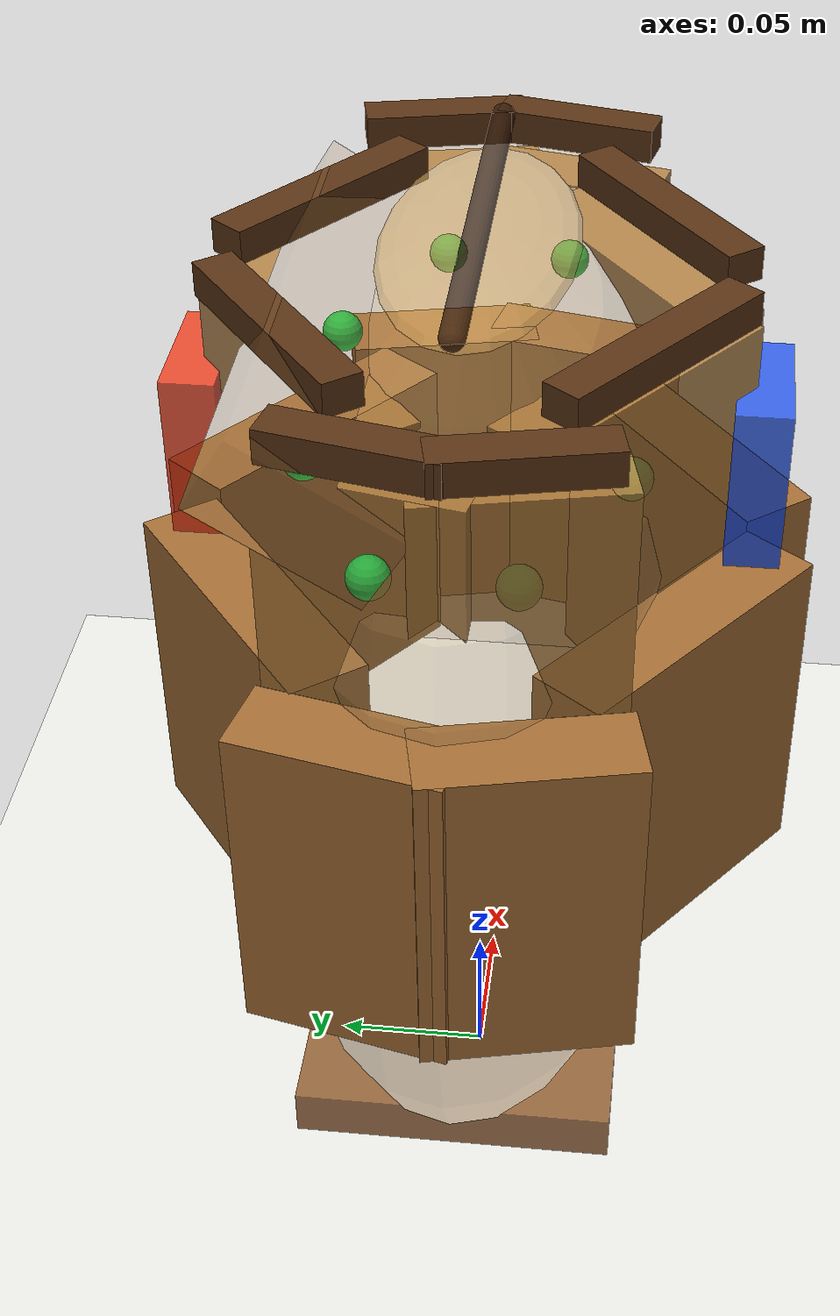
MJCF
<mujoco model="shape_coupled_sack_core_baseline_filled">
  <compiler angle="degree" autolimits="true" />
  <option timestep="0.001000" gravity="0 0 -9.81" integrator="implicitfast" solver="Newton" iterations="100" ls_iterations="24" jacobian="sparse" cone="elliptic" impratio="4" />
  <size nconmax="900" njmax="1800" />
  <visual>
    <global offwidth="1280" offheight="820" />
  </visual>
  <worldbody>
    <geom friction="1.5 0.05 0.005" condim="4" solref="0.026 1" solimp="0.82 0.96 0.001" name="floor" type="plane" pos="0 0 0" size="2.0 2.0 0.05" rgba="0.91 0.91 0.89 1" />
    <light name="key_light" pos="0.4 -0.7 1.5" dir="-0.3 0.4 -1" />
    <camera name="front" pos="0.80 0 0.38" xyaxes="0 1 0 -0.24 0 0.97" />
    <camera name="side" pos="0 -0.78 0.38" xyaxes="1 0 0 0 0.24 0.97" />
    <camera name="overview" pos="0.85 -0.85 0.72" xyaxes="0.72 0.69 0 -0.34 0.35 0.87" />
    <body name="gripper_left_mocap" mocap="true" pos="0 -0.080000 0.230">
      <geom friction="2.3 0.12 0.010" condim="4" solref="0.030 1" solimp="0.78 0.94 0.001" name="gripper_left_mocap_pad" type="box" size="0.020 0.008 0.055" rgba="0.15 0.35 0.95 0.85" />
      <site name="gripper_left_mocap_site" pos="0 0 0" size="0.006" rgba="0.15 0.35 0.95 0.85" />
    </body>
    <body name="gripper_right_mocap" mocap="true" pos="0 0.080000 0.230">
      <geom friction="2.3 0.12 0.010" condim="4" solref="0.030 1" solimp="0.78 0.94 0.001" name="gripper_right_mocap_pad" type="box" size="0.020 0.008 0.055" rgba="0.95 0.25 0.12 0.85" />
      <site name="gripper_right_mocap_site" pos="0 0 0" size="0.006" rgba="0.95 0.25 0.12 0.85" />
    </body>
    <body name="gripper_center_mocap" mocap="true" pos="0 0 0.230">
      <site name="gripper_center_site" pos="0 0 0" size="0.006" rgba="1 1 0 0.8" />
    </body>
    <body name="bag_frame" pos="0 0 0.188">
      <freejoint name="bag_frame_freejoint" />
      <site name="bag_frame_origin" pos="0 0 0" size="0.006" rgba="1 0 0 0.7" />
      <body name="seam_band_00" pos="0.092184 0.020506 0.126000" euler="0 0 102.541136">
        <geom friction="1.35 0.08 0.006" condim="4" solref="0.026 1" solimp="0.82 0.96 0.001" name="seam_band_00_geom" type="box" size="0.024343 0.006000 0.005000" mass="0.016" rgba="0.35 0.20 0.08 0.90" />
        <site name="grasp_seam_00" pos="0 0 0" size="0.005" rgba="1 0.55 0.12 0.90" />
      </body>
      <body name="seam_band_01" pos="0.038184 0.049506 0.126000" euler="0 0 142.357206">
        <geom friction="1.35 0.08 0.006" condim="4" solref="0.026 1" solimp="0.82 0.96 0.001" name="seam_band_01_geom" type="box" size="0.036770 0.006000 0.005000" mass="0.016" rgba="0.35 0.20 0.08 0.90" />
        <site name="grasp_seam_01" pos="0 0 0" size="0.005" rgba="1 0.55 0.12 0.90" />
      </body>
      <body name="seam_band_02" pos="-0.038184 0.049506 0.126000" euler="0 0 217.642794">
        <geom friction="1.35 0.08 0.006" condim="4" solref="0.026 1" solimp="0.82 0.96 0.001" name="seam_band_02_geom" type="box" size="0.036770 0.006000 0.005000" mass="0.016" rgba="0.35 0.20 0.08 0.90" />
        <site name="grasp_seam_02" pos="0 0 0" size="0.005" rgba="1 0.55 0.12 0.90" />
      </body>
      <body name="seam_band_03" pos="-0.092184 0.020506 0.126000" euler="0 0 257.458864">
        <geom friction="1.35 0.08 0.006" condim="4" solref="0.026 1" solimp="0.82 0.96 0.001" name="seam_band_03_geom" type="box" size="0.024343 0.006000 0.005000" mass="0.016" rgba="0.35 0.20 0.08 0.90" />
        <site name="grasp_seam_03" pos="0 0 0" size="0.005" rgba="1 0.55 0.12 0.90" />
      </body>
      <body name="seam_band_04" pos="-0.092184 -0.020506 0.126000" euler="0 0 -77.458864">
        <geom friction="1.35 0.08 0.006" condim="4" solref="0.026 1" solimp="0.82 0.96 0.001" name="seam_band_04_geom" type="box" size="0.024343 0.006000 0.005000" mass="0.016" rgba="0.35 0.20 0.08 0.90" />
        <site name="grasp_seam_04" pos="0 0 0" size="0.005" rgba="1 0.55 0.12 0.90" />
      </body>
      <body name="seam_band_05" pos="-0.038184 -0.049506 0.126000" euler="0 0 -37.642794">
        <geom friction="1.35 0.08 0.006" condim="4" solref="0.026 1" solimp="0.82 0.96 0.001" name="seam_band_05_geom" type="box" size="0.036770 0.006000 0.005000" mass="0.016" rgba="0.35 0.20 0.08 0.90" />
        <site name="grasp_seam_05" pos="0 0 0" size="0.005" rgba="1 0.55 0.12 0.90" />
      </body>
      <body name="seam_band_06" pos="0.038184 -0.049506 0.126000" euler="0 0 37.642794">
        <geom friction="1.35 0.08 0.006" condim="4" solref="0.026 1" solimp="0.82 0.96 0.001" name="seam_band_06_geom" type="box" size="0.036770 0.006000 0.005000" mass="0.016" rgba="0.35 0.20 0.08 0.90" />
        <site name="grasp_seam_06" pos="0 0 0" size="0.005" rgba="1 0.55 0.12 0.90" />
      </body>
      <body name="seam_band_07" pos="0.092184 -0.020506 0.126000" euler="0 0 77.458864">
        <geom friction="1.35 0.08 0.006" condim="4" solref="0.026 1" solimp="0.82 0.96 0.001" name="seam_band_07_geom" type="box" size="0.024343 0.006000 0.005000" mass="0.016" rgba="0.35 0.20 0.08 0.90" />
        <site name="grasp_seam_07" pos="0 0 0" size="0.005" rgba="1 0.55 0.12 0.90" />
      </body>
      <body name="shoulder_panel_00" pos="0.092184 0.020506 0.116000" euler="0 0 102.541136">
        <joint name="shoulder_panel_00_hinge" type="hinge" axis="1 0 0" limited="true" range="-44 52" damping="9.000" stiffness="2.800" />
        <geom friction="1.35 0.08 0.006" condim="4" solref="0.026 1" solimp="0.82 0.96 0.001" name="shoulder_panel_00_geom" type="box" pos="0 0.008000 -0.045000" size="0.029005 0.010000 0.045000" mass="0.030" rgba="0.72 0.52 0.27 0.88" />
        <site name="grasp_shoulder_00" pos="0 0.005600 -0.031500" size="0.006" rgba="0.10 0.75 0.25 0.90" />
      </body>
      <body name="shoulder_panel_01" pos="0.038184 0.049506 0.116000" euler="0 0 142.357206">
        <joint name="shoulder_panel_01_hinge" type="hinge" axis="1 0 0" limited="true" range="-44 52" damping="9.000" stiffness="2.800" />
        <geom friction="1.35 0.08 0.006" condim="4" solref="0.026 1" solimp="0.82 0.96 0.001" name="shoulder_panel_01_geom" type="box" pos="0 0.008000 -0.045000" size="0.043811 0.010000 0.045000" mass="0.030" rgba="0.72 0.52 0.27 0.88" />
        <site name="grasp_shoulder_01" pos="0 0.005600 -0.031500" size="0.006" rgba="0.10 0.75 0.25 0.90" />
      </body>
      <body name="shoulder_panel_02" pos="-0.038184 0.049506 0.116000" euler="0 0 217.642794">
        <joint name="shoulder_panel_02_hinge" type="hinge" axis="1 0 0" limited="true" range="-44 52" damping="9.000" stiffness="2.800" />
        <geom friction="1.35 0.08 0.006" condim="4" solref="0.026 1" solimp="0.82 0.96 0.001" name="shoulder_panel_02_geom" type="box" pos="0 0.008000 -0.045000" size="0.043811 0.010000 0.045000" mass="0.030" rgba="0.72 0.52 0.27 0.88" />
        <site name="grasp_shoulder_02" pos="0 0.005600 -0.031500" size="0.006" rgba="0.10 0.75 0.25 0.90" />
      </body>
      <body name="shoulder_panel_03" pos="-0.092184 0.020506 0.116000" euler="0 0 257.458864">
        <joint name="shoulder_panel_03_hinge" type="hinge" axis="1 0 0" limited="true" range="-44 52" damping="9.000" stiffness="2.800" />
        <geom friction="1.35 0.08 0.006" condim="4" solref="0.026 1" solimp="0.82 0.96 0.001" name="shoulder_panel_03_geom" type="box" pos="0 0.008000 -0.045000" size="0.029005 0.010000 0.045000" mass="0.030" rgba="0.72 0.52 0.27 0.88" />
        <site name="grasp_shoulder_03" pos="0 0.005600 -0.031500" size="0.006" rgba="0.10 0.75 0.25 0.90" />
      </body>
      <body name="shoulder_panel_04" pos="-0.092184 -0.020506 0.116000" euler="0 0 -77.458864">
        <joint name="shoulder_panel_04_hinge" type="hinge" axis="1 0 0" limited="true" range="-44 52" damping="9.000" stiffness="2.800" />
        <geom friction="1.35 0.08 0.006" condim="4" solref="0.026 1" solimp="0.82 0.96 0.001" name="shoulder_panel_04_geom" type="box" pos="0 0.008000 -0.045000" size="0.029005 0.010000 0.045000" mass="0.030" rgba="0.72 0.52 0.27 0.88" />
        <site name="grasp_shoulder_04" pos="0 0.005600 -0.031500" size="0.006" rgba="0.10 0.75 0.25 0.90" />
      </body>
      <body name="shoulder_panel_05" pos="-0.038184 -0.049506 0.116000" euler="0 0 -37.642794">
        <joint name="shoulder_panel_05_hinge" type="hinge" axis="1 0 0" limited="true" range="-44 52" damping="9.000" stiffness="2.800" />
        <geom friction="1.35 0.08 0.006" condim="4" solref="0.026 1" solimp="0.82 0.96 0.001" name="shoulder_panel_05_geom" type="box" pos="0 0.008000 -0.045000" size="0.043811 0.010000 0.045000" mass="0.030" rgba="0.72 0.52 0.27 0.88" />
        <site name="grasp_shoulder_05" pos="0 0.005600 -0.031500" size="0.006" rgba="0.10 0.75 0.25 0.90" />
      </body>
      <body name="shoulder_panel_06" pos="0.038184 -0.049506 0.116000" euler="0 0 37.642794">
        <joint name="shoulder_panel_06_hinge" type="hinge" axis="1 0 0" limited="true" range="-44 52" damping="9.000" stiffness="2.800" />
        <geom friction="1.35 0.08 0.006" condim="4" solref="0.026 1" solimp="0.82 0.96 0.001" name="shoulder_panel_06_geom" type="box" pos="0 0.008000 -0.045000" size="0.043811 0.010000 0.045000" mass="0.030" rgba="0.72 0.52 0.27 0.88" />
        <site name="grasp_shoulder_06" pos="0 0.005600 -0.031500" size="0.006" rgba="0.10 0.75 0.25 0.90" />
      </body>
      <body name="shoulder_panel_07" pos="0.092184 -0.020506 0.116000" euler="0 0 77.458864">
        <joint name="shoulder_panel_07_hinge" type="hinge" axis="1 0 0" limited="true" range="-44 52" damping="9.000" stiffness="2.800" />
        <geom friction="1.35 0.08 0.006" condim="4" solref="0.026 1" solimp="0.82 0.96 0.001" name="shoulder_panel_07_geom" type="box" pos="0 0.008000 -0.045000" size="0.029005 0.010000 0.045000" mass="0.030" rgba="0.72 0.52 0.27 0.88" />
        <site name="grasp_shoulder_07" pos="0 0.005600 -0.031500" size="0.006" rgba="0.10 0.75 0.25 0.90" />
      </body>
      <body name="belly_panel_00" pos="0.094027 0.020916 0.046800" euler="0 0 102.541136">
        <joint name="belly_panel_00_hinge" type="hinge" axis="1 0 0" limited="true" range="-54 64" damping="10.000" stiffness="2.000" />
        <geom friction="1.35 0.08 0.006" condim="4" solref="0.026 1" solimp="0.82 0.96 0.001" name="belly_panel_00_geom" type="box" pos="0 -0.012000 -0.052000" size="0.030641 0.012000 0.052000" mass="0.038" rgba="0.64 0.43 0.21 0.90" />
      </body>
      <body name="belly_panel_01" pos="0.038947 0.050496 0.046800" euler="0 0 142.357206">
        <joint name="belly_panel_01_hinge" type="hinge" axis="1 0 0" limited="true" range="-54 64" damping="10.000" stiffness="2.000" />
        <geom friction="1.35 0.08 0.006" condim="4" solref="0.026 1" solimp="0.82 0.96 0.001" name="belly_panel_01_geom" type="box" pos="0 -0.012000 -0.052000" size="0.046283 0.012000 0.052000" mass="0.038" rgba="0.64 0.43 0.21 0.90" />
      </body>
      <body name="belly_panel_02" pos="-0.038947 0.050496 0.046800" euler="0 0 217.642794">
        <joint name="belly_panel_02_hinge" type="hinge" axis="1 0 0" limited="true" range="-54 64" damping="10.000" stiffness="2.000" />
        <geom friction="1.35 0.08 0.006" condim="4" solref="0.026 1" solimp="0.82 0.96 0.001" name="belly_panel_02_geom" type="box" pos="0 -0.012000 -0.052000" size="0.046283 0.012000 0.052000" mass="0.038" rgba="0.64 0.43 0.21 0.90" />
      </body>
      <body name="belly_panel_03" pos="-0.094027 0.020916 0.046800" euler="0 0 257.458864">
        <joint name="belly_panel_03_hinge" type="hinge" axis="1 0 0" limited="true" range="-54 64" damping="10.000" stiffness="2.000" />
        <geom friction="1.35 0.08 0.006" condim="4" solref="0.026 1" solimp="0.82 0.96 0.001" name="belly_panel_03_geom" type="box" pos="0 -0.012000 -0.052000" size="0.030641 0.012000 0.052000" mass="0.038" rgba="0.64 0.43 0.21 0.90" />
      </body>
      <body name="belly_panel_04" pos="-0.094027 -0.020916 0.046800" euler="0 0 -77.458864">
        <joint name="belly_panel_04_hinge" type="hinge" axis="1 0 0" limited="true" range="-54 64" damping="10.000" stiffness="2.000" />
        <geom friction="1.35 0.08 0.006" condim="4" solref="0.026 1" solimp="0.82 0.96 0.001" name="belly_panel_04_geom" type="box" pos="0 -0.012000 -0.052000" size="0.030641 0.012000 0.052000" mass="0.038" rgba="0.64 0.43 0.21 0.90" />
      </body>
      <body name="belly_panel_05" pos="-0.038947 -0.050496 0.046800" euler="0 0 -37.642794">
        <joint name="belly_panel_05_hinge" type="hinge" axis="1 0 0" limited="true" range="-54 64" damping="10.000" stiffness="2.000" />
        <geom friction="1.35 0.08 0.006" condim="4" solref="0.026 1" solimp="0.82 0.96 0.001" name="belly_panel_05_geom" type="box" pos="0 -0.012000 -0.052000" size="0.046283 0.012000 0.052000" mass="0.038" rgba="0.64 0.43 0.21 0.90" />
      </body>
      <body name="belly_panel_06" pos="0.038947 -0.050496 0.046800" euler="0 0 37.642794">
        <joint name="belly_panel_06_hinge" type="hinge" axis="1 0 0" limited="true" range="-54 64" damping="10.000" stiffness="2.000" />
        <geom friction="1.35 0.08 0.006" condim="4" solref="0.026 1" solimp="0.82 0.96 0.001" name="belly_panel_06_geom" type="box" pos="0 -0.012000 -0.052000" size="0.046283 0.012000 0.052000" mass="0.038" rgba="0.64 0.43 0.21 0.90" />
      </body>
      <body name="belly_panel_07" pos="0.094027 -0.020916 0.046800" euler="0 0 77.458864">
        <joint name="belly_panel_07_hinge" type="hinge" axis="1 0 0" limited="true" range="-54 64" damping="10.000" stiffness="2.000" />
        <geom friction="1.35 0.08 0.006" condim="4" solref="0.026 1" solimp="0.82 0.96 0.001" name="belly_panel_07_geom" type="box" pos="0 -0.012000 -0.052000" size="0.030641 0.012000 0.052000" mass="0.038" rgba="0.64 0.43 0.21 0.90" />
      </body>
      <body name="bottom_sling" pos="0 0 -0.132000">
        <joint name="bottom_sling_sag" type="slide" axis="0 0 1" limited="true" range="-0.020000 0.015000" damping="12.000" stiffness="2.000" />
        <geom friction="1.35 0.08 0.006" condim="4" solref="0.026 1" solimp="0.82 0.96 0.001" name="bottom_sling_pad" type="box" size="0.086 0.050 0.008" mass="0.070" rgba="0.55 0.33 0.14 0.82" />
        <site name="bottom_sling_site" pos="0 0 0" size="0.005" rgba="0.8 0.35 0.08 0.8" />
      </body>
      <body name="fold_root_flap_1" pos="-0.018000 0.030000 0.138000" euler="-58.000000 0 0">
        <joint name="fold_root_flap_1_hinge" type="hinge" axis="1 0 0" limited="true" range="-125 22" damping="8.0" stiffness="2.8" />
        <geom friction="1.35 0.08 0.006" condim="4" solref="0.026 1" solimp="0.82 0.96 0.001" name="fold_root_flap_1_geom" type="box" pos="0 0.028 -0.012" size="0.081697 0.012000 0.026000" mass="0.001" rgba="0.70 0.50 0.27 0.04" contype="0" conaffinity="0" />
        <site name="grasp_fold_1" pos="0 0.028 -0.012" size="0.005" rgba="0.1 0.2 1 0.40" />
      </body>
      <body name="fold_root_flap_2" pos="0.034000 0.018000 0.128000" euler="-95.000000 0 0">
        <joint name="fold_root_flap_2_hinge" type="hinge" axis="1 0 0" limited="true" range="-125 22" damping="8.0" stiffness="2.8" />
        <geom friction="1.35 0.08 0.006" condim="4" solref="0.026 1" solimp="0.82 0.96 0.001" name="fold_root_flap_2_geom" type="box" pos="0 0.028 -0.012" size="0.081697 0.012000 0.026000" mass="0.001" rgba="0.70 0.50 0.27 0.04" contype="0" conaffinity="0" />
        <site name="grasp_fold_2" pos="0 0.028 -0.012" size="0.005" rgba="0.1 0.2 1 0.40" />
      </body>
      <body name="payload_main" pos="0.000000 0.000000 -0.075000">
        <joint name="payload_main_x" type="slide" axis="1 0 0" limited="true" range="-0.028 0.028" damping="20" stiffness="3.0" />
        <joint name="payload_main_y" type="slide" axis="0 1 0" limited="true" range="-0.024 0.024" damping="20" stiffness="3.0" />
        <joint name="payload_main_z" type="slide" axis="0 0 1" limited="true" range="-0.020 0.020" damping="20" stiffness="3.0" />
        <geom friction="1.35 0.08 0.006" condim="4" solref="0.026 1" solimp="0.82 0.96 0.001" name="payload_main_geom" type="ellipsoid" size="0.076000 0.048000 0.052000" mass="0.4800" rgba="0.42 0.22 0.10 0.72" />
      </body>
      <body name="visual_upper_hull" pos="0 0 0.052">
        <geom friction="1.35 0.08 0.006" condim="4" solref="0.026 1" solimp="0.82 0.96 0.001" name="visual_upper_hull_geom" type="ellipsoid" size="0.108000 0.058000 0.078000" rgba="0.78 0.62 0.38 0.28" contype="0" conaffinity="0" mass="0.001" />
      </body>
      <body name="visual_lower_hull" pos="0 0 -0.070000">
        <geom friction="1.35 0.08 0.006" condim="4" solref="0.026 1" solimp="0.82 0.96 0.001" name="visual_lower_hull_geom" type="ellipsoid" size="0.111240 0.059740 0.095880" rgba="0.72 0.50 0.25 0.42" contype="0" conaffinity="0" mass="0.001" />
      </body>
      <body name="sealed_top_cap_visual" pos="0 0 0.134000">
        <geom friction="1.35 0.08 0.006" condim="4" solref="0.026 1" solimp="0.82 0.96 0.001" name="sealed_top_cap_visual_geom" type="ellipsoid" size="0.058320 0.027840 0.006000" rgba="0.82 0.64 0.36 0.60" contype="0" conaffinity="0" mass="0.001" />
      </body>
      <body name="sealed_top_stitch_visual" pos="0 0 0.142000">
        <geom friction="1.35 0.08 0.006" condim="4" solref="0.026 1" solimp="0.82 0.96 0.001" name="sealed_top_stitch_visual_geom" type="capsule" fromto="-0.064 0 0 0.064 0 0" size="0.0035" rgba="0.22 0.12 0.05 0.75" contype="0" conaffinity="0" mass="0.001" />
      </body>
    </body>
  </worldbody>
</mujoco>
